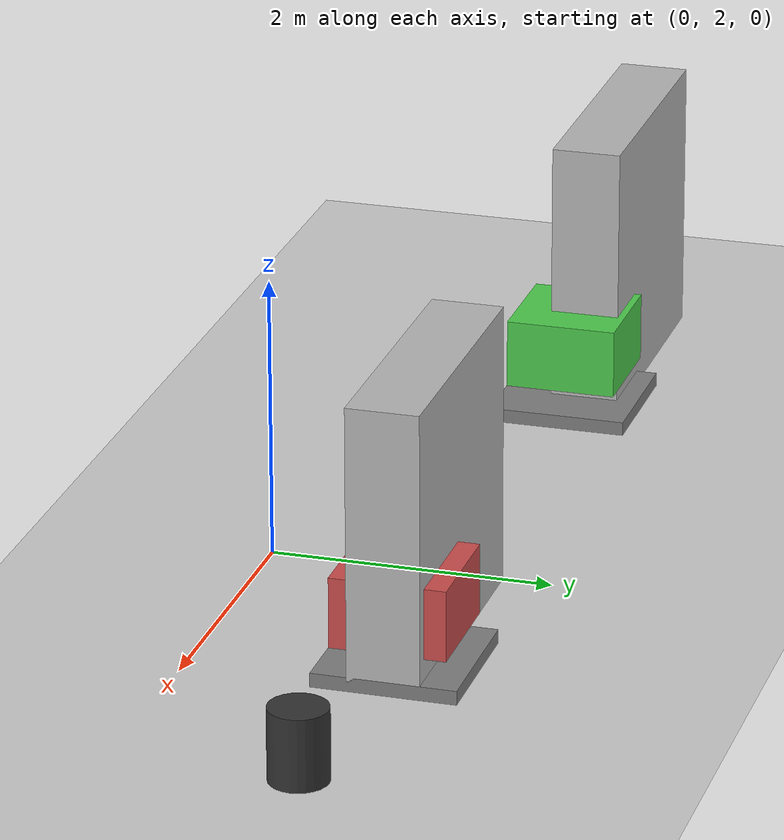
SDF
<?xml version="1.0" ?>
<sdf version="1.5">
  <world name="default">

    <!-- ================= PHYSICS ================= -->
    <physics name="default_physics" default="0" type="ode">
      <gravity>0 0 -9.81</gravity>
      <ode>
        <solver>
          <type>quick</type>
          <iters>10</iters>
          <sor>1.3</sor>
        </solver>
        <constraints>
          <cfm>0</cfm>
          <erp>0.2</erp>
        </constraints>
      </ode>
      <max_step_size>0.002</max_step_size>
      <real_time_factor>1</real_time_factor>
      <real_time_update_rate>500</real_time_update_rate>
    </physics>

    <!-- ================= GROUND ================= -->
    <include>
      <uri>model://ground_plane</uri>
    </include>

    <!-- ================= SHELVES ================= -->
    <!-- Using unit_box scaled as shelves -->
    <model name="shelf_1">
      <pose>1 3.4 1 0 0 0</pose>
      <static>true</static>
      <link name="link">
        <visual name="visual">
          <geometry>
            <box><size>2 0.5 2</size></box>
          </geometry>
        </visual>
        <collision name="collision">
          <geometry>
            <box><size>2 0.5 2</size></box>
          </geometry>
        </collision>
      </link>
    </model>

    <model name="shelf_2">
      <pose>-4.1 3.4 1 0 0 0</pose>
      <static>true</static>
      <link name="link">
        <visual name="visual">
          <geometry>
            <box><size>2 0.5 2</size></box>
          </geometry>
        </visual>
        <collision name="collision">
          <geometry>
            <box><size>2 0.5 2</size></box>
          </geometry>
        </collision>
      </link>
    </model>

    <!-- Add more shelves similarly -->

    <!-- ================= PALLETS/BOXES ================= -->
    <model name="pallet_1_box">
      <pose>1.5 3.4 0.5 0 0 0</pose>
      <static>true</static>
      <link name="link">
        <visual name="visual">
          <geometry>
            <box><size>0.8 0.8 0.5</size></box>
          </geometry>
          <material><ambient>0.8 0.3 0.3 1</ambient></material>
        </visual>
        <collision name="collision">
          <geometry>
            <box><size>0.8 0.8 0.5</size></box>
          </geometry>
        </collision>
      </link>
    </model>

    <model name="pallet_1_base">
      <pose>1.5 3.4 0.05 0 0 0</pose>
      <static>true</static>
      <link name="link">
        <visual name="visual">
          <geometry>
            <box><size>1 1 0.1</size></box>
          </geometry>
          <material><ambient>0.5 0.5 0.5 1</ambient></material>
        </visual>
        <collision name="collision">
          <geometry>
            <box><size>1 1 0.1</size></box>
          </geometry>
        </collision>
      </link>
    </model>

    <!-- Duplicate pallets as needed with different poses -->
    <model name="pallet_2_box">
      <pose>-3.2 3.3 0.5 0 0 0</pose>
      <static>true</static>
      <link name="link">
        <visual name="visual">
          <geometry>
            <box><size>0.8 0.8 0.5</size></box>
          </geometry>
          <material><ambient>0.3 0.8 0.3 1</ambient></material>
        </visual>
        <collision name="collision">
          <geometry>
            <box><size>0.8 0.8 0.5</size></box>
          </geometry>
        </collision>
      </link>
    </model>

    <model name="pallet_2_base">
      <pose>-3.2 3.3 0.05 0 0 0</pose>
      <static>true</static>
      <link name="link">
        <visual name="visual">
          <geometry>
            <box><size>1 1 0.1</size></box>
          </geometry>
          <material><ambient>0.5 0.5 0.5 1</ambient></material>
        </visual>
        <collision name="collision">
          <geometry>
            <box><size>1 1 0.1</size></box>
          </geometry>
        </collision>
      </link>
    </model>

    <!-- ================= TRASH CAN ================= -->
    <model name="trash_can">
      <pose>3.8 3.4 0.5 0 0 0</pose>
      <static>true</static>
      <link name="link">
        <visual name="visual">
          <geometry>
            <cylinder><radius>0.2</radius><length>0.5</length></cylinder>
          </geometry>
          <material><ambient>0.2 0.2 0.2 1</ambient></material>
        </visual>
        <collision name="collision">
          <geometry>
            <cylinder><radius>0.2</radius><length>0.5</length></cylinder>
          </geometry>
        </collision>
      </link>
    </model>

  </world>
</sdf>
